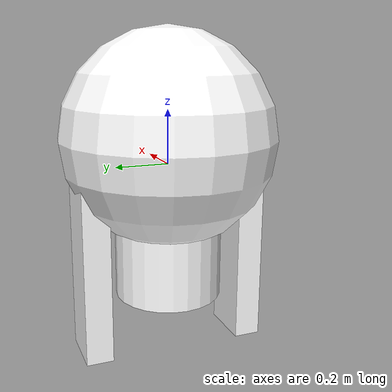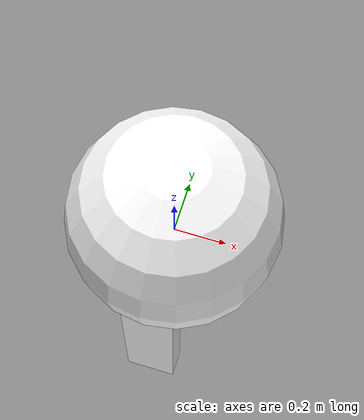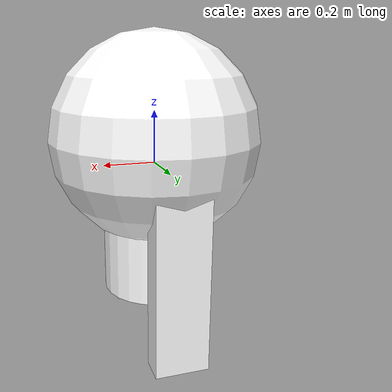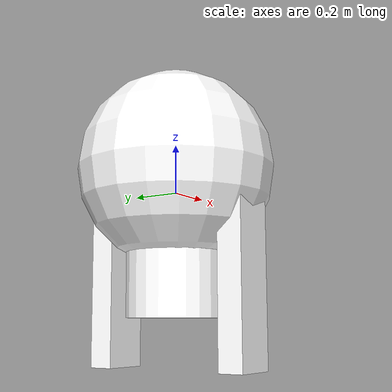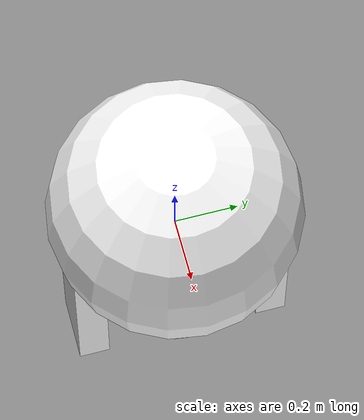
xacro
<?xml version="1.0"?>
<robot name="r2d2" version="1.0"
    xmlns:xacro="http://www.ros.org/wiki/xacro">
    <link name="axis">
        <inertial>
            <mass value="1" />
            <inertia ixx="100" ixy="0" ixz="0" iyy="100" iyz="0" izz="100" />
            <origin />
        </inertial>
        <visual>
            <origin xyz="0 0 0" rpy="1.57 0 0" />
            <geometry>
                <cylinder radius="0.01" length=".5" />
            </geometry>
            <material name="gray">
                <color rgba=".2 .2 .2 1" />
            </material>
        </visual>
        <collision>
            <origin xyz="0 0 0" rpy="1.57 0 0" />
            <geometry>
                <cylinder radius="0.01" length=".5" />
            </geometry>
            <contact_coefficients mu="0" kp="1000.0" kd="1.0" />
        </collision>
    </link>
    <link name="leg1">
        <inertial>
            <mass value="1" />
            <inertia ixx="100" ixy="0" ixz="0" iyy="100" iyz="0" izz="100" />
            <origin />
        </inertial>
        <visual>
            <origin xyz="0 0 -.3" />
            <geometry>
                <box size=".20 .10 .8" />
            </geometry>
            <material name="white">
                <color rgba="1 1 1 1" />
            </material>
        </visual>
        <collision>
            <origin xyz="0 0 -.3" />
            <geometry>
                <box size=".20 .10 .8" />
            </geometry>
            <contact_coefficients mu="0" kp="1000.0" kd="1.0" />
        </collision>
    </link>
    <joint name="leg1connect" type="fixed">
        <origin xyz="0 .30 0" />
        <parent link="axis" />
        <child link="leg1" />
    </joint>
    <link name="leg2">
        <inertial>
            <mass value="1" />
            <inertia ixx="100" ixy="0" ixz="0" iyy="100" iyz="0" izz="100" />
            <origin />
        </inertial>
        <visual>
            <origin xyz="0 0 -.3" />
            <geometry>
                <box size=".20 .10 .8" />
            </geometry>
            <material name="white">
                <color rgba="1 1 1 1" />
            </material>
        </visual>
        <collision>
            <origin xyz="0 0 -.3" />
            <geometry>
                <box size=".20 .10 .8" />
            </geometry>
            <contact_coefficients mu="0" kp="1000.0" kd="1.0" />
        </collision>
    </link>
    <joint name="leg2connect" type="fixed">
        <origin xyz="0 -.30 0" />
        <parent link="axis" />
        <child link="leg2" />
    </joint>
    <link name="body">
        <inertial>
            <mass value="1" />
            <inertia ixx="100" ixy="0" ixz="0" iyy="100" iyz="0" izz="100" />
            <origin />
        </inertial>
        <visual>
            <origin xyz="0 0 -0.2" />
            <geometry>
                <cylinder radius=".20" length=".6" />
            </geometry>
            <material name="white" />
        </visual>
        <collision>
            <origin xyz="0 0 0.2" />
            <geometry>
                <cylinder radius=".20" length=".6" />
            </geometry>
            <contact_coefficients mu="0" kp="1000.0" kd="1.0" />
        </collision>
    </link>
    <joint name="tilt" type="revolute">
        <parent link="axis" />
        <child link="body" />
        <origin xyz="0 0 0" rpy="0 0 0" />
        <axis xyz="0 1 0" />
        <limit upper="0" lower="-.5" effort="10" velocity="10" />
    </joint>
    <link name="head">
        <inertial>
            <mass value="1" />
            <inertia ixx="100" ixy="0" ixz="0" iyy="100" iyz="0" izz="100" />
            <origin />
        </inertial>
        <visual>
            <geometry>
                <sphere radius=".4" />
            </geometry>
            <material name="white" />
        </visual>
        <collision>
            <origin />
            <geometry>
                <sphere radius=".4" />
            </geometry>
            <contact_coefficients mu="0" kp="1000.0" kd="1.0" />
        </collision>
    </link>
    <joint name="swivel" type="continuous">
        <origin xyz="0 0 0.1" />
        <axis xyz="0 0 1" />
        <parent link="body" />
        <child link="head" />
    </joint>
    <link name="rod">
        <inertial>
            <mass value="1" />
            <inertia ixx="100" ixy="0" ixz="0" iyy="100" iyz="0" izz="100" />
            <origin />
        </inertial>
        <visual>
            <origin xyz="0 0 -.1" />
            <geometry>
                <cylinder radius=".02" length=".2" />
            </geometry>
            <material name="gray" />
        </visual>
        <collision>
            <origin />
            <geometry>
                <cylinder radius=".02" length=".2" />
            </geometry>
            <contact_coefficients mu="0" kp="1000.0" kd="1.0" />
        </collision>
    </link>
    <!-- associated with height value -->
    <joint name="periscope" type="prismatic">
        <origin xyz=".12 0 .15" />
        <axis xyz="0 0 1" />
        <limit upper="0" lower="-.5" effort="10" velocity="10" />
        <parent link="head" />
        <child link="rod" />
    </joint>
    <link name="box">
        <inertial>
            <mass value="1" />
            <inertia ixx="100" ixy="0" ixz="0" iyy="100" iyz="0" izz="100" />
            <origin />
        </inertial>
        <visual>
            <geometry>
                <box size=".05 .05 .05" />
            </geometry>
            <material name="blue">
                <color rgba="0 0 1 1" />
            </material>
        </visual>
        <collision>
            <origin />
            <geometry>
                <box size=".05 .05 .05" />
            </geometry>
            <contact_coefficients mu="0" kp="1000.0" kd="1.0" />
        </collision>
    </link>
    <joint name="boxconnect" type="fixed">
        <origin xyz="0 0 0" />
        <parent link="rod" />
        <child link="box" />
    </joint>
</robot>
